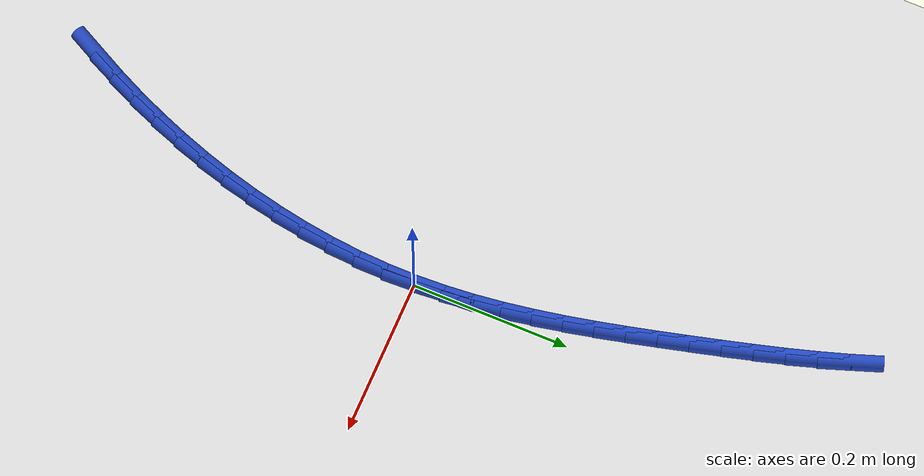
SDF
<sdf version="1.6">
 <world name="default">
  <model name="ground_plane">
   <static>1</static>
   <link name="link">
    <collision name="collision">
     <geometry><plane><normal>0 0 1</normal><size>100 100</size></plane></geometry>
     <surface><friction><ode><mu>100</mu><mu2>50</mu2></ode></friction></surface>
    </collision>
    <visual name="visual">
     <cast_shadows>0</cast_shadows>
     <geometry><plane><normal>0 0 1</normal><size>100 100</size></plane></geometry>
     <material>
      <script><uri>file://media/materials/scripts/gazebo.material</uri><name>Gazebo/WhiteGlow</name></script>
     </material>
    </visual>
   </link>
  </model>
  <model name="line">
   <link name="link_0">
    <pose>3.469446951953614e-17 1.6653345369377348e-16 0.01 0 1.57 -1.5247900248946589</pose>
    <collision name="collision">
     <geometry><cylinder><radius>0.01</radius><length>0.08</length></cylinder></geometry>
    </collision>
    <visual name="visual">
     <material>
      <script><name>Gazebo/Blue</name><uri>file://media/materials/scripts/gazebo.material</uri></script>
     </material>
     <geometry><cylinder><radius>0.01</radius><length>0.08</length></cylinder></geometry>
    </visual>
   </link>
   <link name="link_1">
    <pose>-0.0017331883474911327 0.03764626350921732 0.01 0 1.57 -1.4815289747677483</pose>
    <collision name="collision">
     <geometry><cylinder><radius>0.01</radius><length>0.08</length></cylinder></geometry>
    </collision>
    <visual name="visual">
     <material>
      <script><name>Gazebo/Blue</name><uri>file://media/materials/scripts/gazebo.material</uri></script>
     </material>
     <geometry><cylinder><radius>0.01</radius><length>0.08</length></cylinder></geometry>
    </visual>
   </link>
   <link name="link_2">
    <pose>-0.005092713649914606 0.07518066823448695 0.01 0 1.57 -1.4431858875743346</pose>
    <collision name="collision">
     <geometry><cylinder><radius>0.01</radius><length>0.08</length></cylinder></geometry>
    </collision>
    <visual name="visual">
     <material>
      <script><name>Gazebo/Blue</name><uri>file://media/materials/scripts/gazebo.material</uri></script>
     </material>
     <geometry><cylinder><radius>0.01</radius><length>0.08</length></cylinder></geometry>
    </visual>
   </link>
   <link name="link_3">
    <pose>-0.009897221894903094 0.11262588327635743 0.01 0 1.57 -1.4098582267727047</pose>
    <collision name="collision">
     <geometry><cylinder><radius>0.01</radius><length>0.08</length></cylinder></geometry>
    </collision>
    <visual name="visual">
     <material>
      <script><name>Gazebo/Blue</name><uri>file://media/materials/scripts/gazebo.material</uri></script>
     </material>
     <geometry><cylinder><radius>0.01</radius><length>0.08</length></cylinder></geometry>
    </visual>
   </link>
   <link name="link_4">
    <pose>-0.015965359070089336 0.1500045777353774 0.01 0 1.57 -1.3815666401645523</pose>
    <collision name="collision">
     <geometry><cylinder><radius>0.01</radius><length>0.08</length></cylinder></geometry>
    </collision>
    <visual name="visual">
     <material>
      <script><name>Gazebo/Blue</name><uri>file://media/materials/scripts/gazebo.material</uri></script>
     </material>
     <geometry><cylinder><radius>0.01</radius><length>0.08</length></cylinder></geometry>
    </visual>
   </link>
   <link name="link_5">
    <pose>-0.023115771163106008 0.18733942071209506 0.01 0 1.57 -1.3582800927733782</pose>
    <collision name="collision">
     <geometry><cylinder><radius>0.01</radius><length>0.08</length></cylinder></geometry>
    </collision>
    <visual name="visual">
     <material>
      <script><name>Gazebo/Blue</name><uri>file://media/materials/scripts/gazebo.material</uri></script>
     </material>
     <geometry><cylinder><radius>0.01</radius><length>0.08</length></cylinder></geometry>
    </visual>
   </link>
   <link name="link_6">
    <pose>-0.031167104161585864 0.22465308130705897 0.01 0 1.57 -1.3399376308576463</pose>
    <collision name="collision">
     <geometry><cylinder><radius>0.01</radius><length>0.08</length></cylinder></geometry>
    </collision>
    <visual name="visual">
     <material>
      <script><name>Gazebo/Blue</name><uri>file://media/materials/scripts/gazebo.material</uri></script>
     </material>
     <geometry><cylinder><radius>0.01</radius><length>0.08</length></cylinder></geometry>
    </visual>
   </link>
   <link name="link_7">
    <pose>-0.0399380040531616 0.2619682286208176 0.01 0 1.57 -1.3264658921392016</pose>
    <collision name="collision">
     <geometry><cylinder><radius>0.01</radius><length>0.08</length></cylinder></geometry>
    </collision>
    <visual name="visual">
     <material>
      <script><name>Gazebo/Blue</name><uri>file://media/materials/scripts/gazebo.material</uri></script>
     </material>
     <geometry><cylinder><radius>0.01</radius><length>0.08</length></cylinder></geometry>
    </visual>
   </link>
   <link name="link_8">
    <pose>-0.049247116825465925 0.29930753175391933 0.01 0 1.57 -1.317792243191467</pose>
    <collision name="collision">
     <geometry><cylinder><radius>0.01</radius><length>0.08</length></cylinder></geometry>
    </collision>
    <visual name="visual">
     <material>
      <script><name>Gazebo/Blue</name><uri>file://media/materials/scripts/gazebo.material</uri></script>
     </material>
     <geometry><cylinder><radius>0.01</radius><length>0.08</length></cylinder></geometry>
    </visual>
   </link>
   <link name="link_9">
    <pose>-0.05891308846613158 0.3366936598069126 0.01 0 1.57 -1.3128598890382424</pose>
    <collision name="collision">
     <geometry><cylinder><radius>0.01</radius><length>0.08</length></cylinder></geometry>
    </collision>
    <visual name="visual">
     <material>
      <script><name>Gazebo/Blue</name><uri>file://media/materials/scripts/gazebo.material</uri></script>
     </material>
     <geometry><cylinder><radius>0.01</radius><length>0.08</length></cylinder></geometry>
    </visual>
   </link>
   <link name="link_10">
    <pose>-0.06879055258570649 0.3741347953621865 0.01 0 1.57 -1.3055094849972249</pose>
    <collision name="collision">
     <geometry><cylinder><radius>0.01</radius><length>0.08</length></cylinder></geometry>
    </collision>
    <visual name="visual">
     <material>
      <script><name>Gazebo/Blue</name><uri>file://media/materials/scripts/gazebo.material</uri></script>
     </material>
     <geometry><cylinder><radius>0.01</radius><length>0.08</length></cylinder></geometry>
    </visual>
   </link>
   <link name="link_11">
    <pose>-0.07895587333172596 0.41154986521943626 0.01 0 1.57 -1.2933846026535858</pose>
    <collision name="collision">
     <geometry><cylinder><radius>0.01</radius><length>0.08</length></cylinder></geometry>
    </collision>
    <visual name="visual">
     <material>
      <script><name>Gazebo/Blue</name><uri>file://media/materials/scripts/gazebo.material</uri></script>
     </material>
     <geometry><cylinder><radius>0.01</radius><length>0.08</length></cylinder></geometry>
    </visual>
   </link>
   <link name="link_12">
    <pose>-0.08956978862036148 0.44882383221984856 0.01 0 1.57 -1.2764155680008045</pose>
    <collision name="collision">
     <geometry><cylinder><radius>0.01</radius><length>0.08</length></cylinder></geometry>
    </collision>
    <visual name="visual">
     <material>
      <script><name>Gazebo/Blue</name><uri>file://media/materials/scripts/gazebo.material</uri></script>
     </material>
     <geometry><cylinder><radius>0.01</radius><length>0.08</length></cylinder></geometry>
    </visual>
   </link>
   <link name="link_13">
    <pose>-0.10079320085683027 0.48584159299091306 0.01 0 1.57 -1.2544996602432215</pose>
    <collision name="collision">
     <geometry><cylinder><radius>0.01</radius><length>0.08</length></cylinder></geometry>
    </collision>
    <visual name="visual">
     <material>
      <script><name>Gazebo/Blue</name><uri>file://media/materials/scripts/gazebo.material</uri></script>
     </material>
     <geometry><cylinder><radius>0.01</radius><length>0.08</length></cylinder></geometry>
    </visual>
   </link>
   <link name="link_14">
    <pose>-0.11278701244634962 0.5224880441601196 0.01 0 1.57 -1.2275071825183512</pose>
    <collision name="collision">
     <geometry><cylinder><radius>0.01</radius><length>0.08</length></cylinder></geometry>
    </collision>
    <visual name="visual">
     <material>
      <script><name>Gazebo/Blue</name><uri>file://media/materials/scripts/gazebo.material</uri></script>
     </material>
     <geometry><cylinder><radius>0.01</radius><length>0.08</length></cylinder></geometry>
    </visual>
   </link>
   <link name="link_167">
    <pose>-0.12084844036500904 -0.4773896704934056 0.01 0 1.57 1.0973665880597647</pose>
    <collision name="collision">
     <geometry><cylinder><radius>0.01</radius><length>0.08</length></cylinder></geometry>
    </collision>
    <visual name="visual">
     <material>
      <script><name>Gazebo/Blue</name><uri>file://media/materials/scripts/gazebo.material</uri></script>
     </material>
     <geometry><cylinder><radius>0.01</radius><length>0.08</length></cylinder></geometry>
    </visual>
   </link>
   <link name="link_168">
    <pose>-0.10335016779630804 -0.4432325806723647 0.01 0 1.57 1.1348729357724936</pose>
    <collision name="collision">
     <geometry><cylinder><radius>0.01</radius><length>0.08</length></cylinder></geometry>
    </collision>
    <visual name="visual">
     <material>
      <script><name>Gazebo/Blue</name><uri>file://media/materials/scripts/gazebo.material</uri></script>
     </material>
     <geometry><cylinder><radius>0.01</radius><length>0.08</length></cylinder></geometry>
    </visual>
   </link>
   <link name="link_169">
    <pose>-0.08711071802782071 -0.4083697551215492 0.01 0 1.57 1.1714814855969415</pose>
    <collision name="collision">
     <geometry><cylinder><radius>0.01</radius><length>0.08</length></cylinder></geometry>
    </collision>
    <visual name="visual">
     <material>
      <script><name>Gazebo/Blue</name><uri>file://media/materials/scripts/gazebo.material</uri></script>
     </material>
     <geometry><cylinder><radius>0.01</radius><length>0.08</length></cylinder></geometry>
    </visual>
   </link>
   <link name="link_170">
    <pose>-0.07213678082747477 -0.37288529916342267 0.01 0 1.57 1.2073254143796945</pose>
    <collision name="collision">
     <geometry><cylinder><radius>0.01</radius><length>0.08</length></cylinder></geometry>
    </collision>
    <visual name="visual">
     <material>
      <script><name>Gazebo/Blue</name><uri>file://media/materials/scripts/gazebo.material</uri></script>
     </material>
     <geometry><cylinder><radius>0.01</radius><length>0.08</length></cylinder></geometry>
    </visual>
   </link>
   <link name="link_171">
    <pose>-0.05843507059647301 -0.33686330923630653 0.01 0 1.57 1.242887335696736</pose>
    <collision name="collision">
     <geometry><cylinder><radius>0.01</radius><length>0.08</length></cylinder></geometry>
    </collision>
    <visual name="visual">
     <material>
      <script><name>Gazebo/Blue</name><uri>file://media/materials/scripts/gazebo.material</uri></script>
     </material>
     <geometry><cylinder><radius>0.01</radius><length>0.08</length></cylinder></geometry>
    </visual>
   </link>
   <link name="link_172">
    <pose>-0.046024937241111064 -0.30038332470464185 0.01 0 1.57 1.2792182003992292</pose>
    <collision name="collision">
     <geometry><cylinder><radius>0.01</radius><length>0.08</length></cylinder></geometry>
    </collision>
    <visual name="visual">
     <material>
      <script><name>Gazebo/Blue</name><uri>file://media/materials/scripts/gazebo.material</uri></script>
     </material>
     <geometry><cylinder><radius>0.01</radius><length>0.08</length></cylinder></geometry>
    </visual>
   </link>
   <link name="link_173">
    <pose>-0.03495893621693103 -0.26351290914401504 0.01 0 1.57 1.316600402607587</pose>
    <collision name="collision">
     <geometry><cylinder><radius>0.01</radius><length>0.08</length></cylinder></geometry>
    </collision>
    <visual name="visual">
     <material>
      <script><name>Gazebo/Blue</name><uri>file://media/materials/scripts/gazebo.material</uri></script>
     </material>
     <geometry><cylinder><radius>0.01</radius><length>0.08</length></cylinder></geometry>
    </visual>
   </link>
   <link name="link_174">
    <pose>-0.02529501235344762 -0.22631768241860853 0.01 0 1.57 1.3551647876640303</pose>
    <collision name="collision">
     <geometry><cylinder><radius>0.01</radius><length>0.08</length></cylinder></geometry>
    </collision>
    <visual name="visual">
     <material>
      <script><name>Gazebo/Blue</name><uri>file://media/materials/scripts/gazebo.material</uri></script>
     </material>
     <geometry><cylinder><radius>0.01</radius><length>0.08</length></cylinder></geometry>
    </visual>
   </link>
   <link name="link_175">
    <pose>-0.017091110480175548 -0.18886326439260456 0.01 0 1.57 1.395037995554061</pose>
    <collision name="collision">
     <geometry><cylinder><radius>0.01</radius><length>0.08</length></cylinder></geometry>
    </collision>
    <visual name="visual">
     <material>
      <script><name>Gazebo/Blue</name><uri>file://media/materials/scripts/gazebo.material</uri></script>
     </material>
     <geometry><cylinder><radius>0.01</radius><length>0.08</length></cylinder></geometry>
    </visual>
   </link>
   <link name="link_176">
    <pose>-0.010405175426629396 -0.15121527493018452 0.01 0 1.57 1.4363405729146816</pose>
    <collision name="collision">
     <geometry><cylinder><radius>0.01</radius><length>0.08</length></cylinder></geometry>
    </collision>
    <visual name="visual">
     <material>
      <script><name>Gazebo/Blue</name><uri>file://media/materials/scripts/gazebo.material</uri></script>
     </material>
     <geometry><cylinder><radius>0.01</radius><length>0.08</length></cylinder></geometry>
    </visual>
   </link>
   <link name="link_177">
    <pose>-0.005295152022324149 -0.11343933389553228 0.01 0 1.57 1.479184411920497</pose>
    <collision name="collision">
     <geometry><cylinder><radius>0.01</radius><length>0.08</length></cylinder></geometry>
    </collision>
    <visual name="visual">
     <material>
      <script><name>Gazebo/Blue</name><uri>file://media/materials/scripts/gazebo.material</uri></script>
     </material>
     <geometry><cylinder><radius>0.01</radius><length>0.08</length></cylinder></geometry>
    </visual>
   </link>
   <link name="link_178">
    <pose>-0.0018189850967743528 -0.07560106115282922 0.01 0 1.57 1.5236694559817374</pose>
    <collision name="collision">
     <geometry><cylinder><radius>0.01</radius><length>0.08</length></cylinder></geometry>
    </collision>
    <visual name="visual">
     <material>
      <script><name>Gazebo/Blue</name><uri>file://media/materials/scripts/gazebo.material</uri></script>
     </material>
     <geometry><cylinder><radius>0.01</radius><length>0.08</length></cylinder></geometry>
    </visual>
   </link>
   <link name="link_179">
    <pose>-3.4619479494725665e-05 -0.03776607656625766 0.01 0 1.57 1.569879645133855</pose>
    <collision name="collision">
     <geometry><cylinder><radius>0.01</radius><length>0.08</length></cylinder></geometry>
    </collision>
    <visual name="visual">
     <material>
      <script><name>Gazebo/Blue</name><uri>file://media/materials/scripts/gazebo.material</uri></script>
     </material>
     <geometry><cylinder><radius>0.01</radius><length>0.08</length></cylinder></geometry>
    </visual>
   </link>
   <link name="link_180">
    <pose>3.122502256758253e-17 1.942890293094024e-16 0.01 0 1.57 -1.5237145234692118</pose>
    <collision name="collision">
     <geometry><cylinder><radius>0.01</radius><length>0.08</length></cylinder></geometry>
    </collision>
    <visual name="visual">
     <material>
      <script><name>Gazebo/Blue</name><uri>file://media/materials/scripts/gazebo.material</uri></script>
     </material>
     <geometry><cylinder><radius>0.01</radius><length>0.08</length></cylinder></geometry>
    </visual>
   </link>
   <link name="link_181">
    <pose>-0.0017730714878047907 0.0376315486817621 0.01 0 1.57 -1.5237145234692118</pose>
    <collision name="collision">
     <geometry><cylinder><radius>0.01</radius><length>0.08</length></cylinder></geometry>
    </collision>
    <visual name="visual">
     <material>
      <script><name>Gazebo/Blue</name><uri>file://media/materials/scripts/gazebo.material</uri></script>
     </material>
     <geometry><cylinder><radius>0.01</radius><length>0.08</length></cylinder></geometry>
    </visual>
   </link>
  </model>
 </world>
</sdf>
